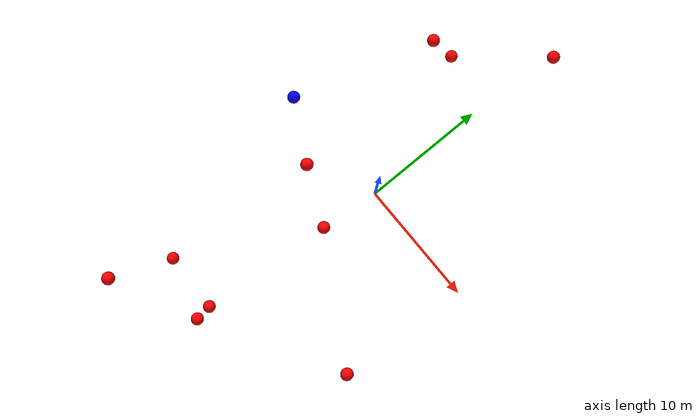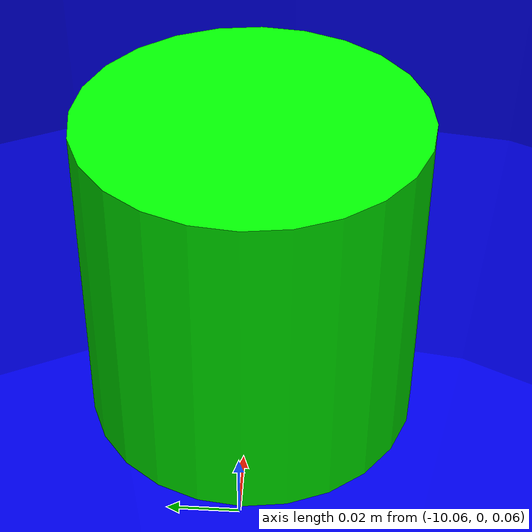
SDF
<?xml version="1.0" ?>
<sdf version="1.8">
    <world name="3d_world">
        <physics name="1ms" type="ode">
            <max_step_size>0.001</max_step_size>
            <real_time_factor>1.0</real_time_factor>
            <real_time_update_rate>1000.0</real_time_update_rate>
        </physics>
        <gravity>0 0 0</gravity>

        <plugin
            filename="gz-sim-physics-system"
            name="gz::sim::v8::systems::Physics">
        </plugin>
        <plugin
            filename="libignition-gazebo-user-commands-system.so"
            name="ignition::gazebo::systems::UserCommands">
        </plugin>
        <plugin
            filename="gz-sim-scene-broadcaster-system"
            name="gz::sim::systems::SceneBroadcaster">
        </plugin>
        <plugin
            filename="gz-sim-sensors-system"
            name="gz::sim::systems::Sensors">
            <render_engine>ogre2</render_engine>
        </plugin>

        <light type="directional" name="sun">
            <cast_shadows>true</cast_shadows>
            <pose>0 0 10 0 0 0</pose>
            <diffuse>0.8 0.8 0.8 1</diffuse>
            <specular>0.2 0.2 0.2 1</specular>
            <attenuation>
                <range>1000</range>
                <constant>0.9</constant>
                <linear>0.01</linear>
                <quadratic>0.001</quadratic>
            </attenuation>
            <direction>-0.5 0.1 -0.9</direction>
        </light>

        <!-- AGENTE -->
        <model name='agente' canonical_link='chassis'>
            <pose relative_to='world'>-10.0 0 0.0 0 0 0</pose>
            <link name='chassis'>
                <pose relative_to='__model__'>0.0 0 0.0 0 0 0</pose>
                <inertial>
                    <mass>1.14395</mass>
                    <inertia>
                        <ixx>0.095329</ixx>
                        <ixy>0</ixy>
                        <ixz>0</ixz>
                        <iyy>0.381317</iyy>
                        <iyz>0</iyz>
                        <izz>0.476646</izz>
                    </inertia>
                </inertial>
                <visual name='visual'>
                    <geometry>
                        <sphere>
                            <radius>0.5</radius>
                        </sphere>
                    </geometry>
                    <material>
                        <ambient>0.0 0.0 1.0 1</ambient>
                        <diffuse>0.0 0.0 1.0 1</diffuse>
                        <specular>0.0 0.0 1.0 1</specular>
                    </material>
                </visual>
                <collision name='collision'>
                    <geometry>
                        <sphere>
                            <radius>0.5</radius>
                        </sphere>
                    </geometry>
                </collision>
                <enable_gravity>false</enable_gravity>
            </link>

            <link name='lidar_link'>
                <pose relative_to='chassis'>0.0 0 0.1 0 0 0</pose>
                <inertial>
                    <mass>0.1</mass>
                    <inertia>
                        <ixx>0.000166667</ixx>
                        <iyy>0.000166667</iyy>
                        <izz>0.000166667</izz>
                    </inertia>
                </inertial>
                <collision name='collision'>
                    <geometry>
                        <cylinder>
                            <radius>0.05</radius>
                            <length>0.1</length>
                        </cylinder>
                    </geometry>
                </collision>
                <visual name='visual'>
                    <geometry>
                        <cylinder>
                            <radius>0.05</radius>
                            <length>0.1</length>
                        </cylinder>
                    </geometry>
                    <material>
                        <ambient>0.0 1.0 0.0 1</ambient>
                        <diffuse>0.0 1.0 0.0 1</diffuse>
                        <specular>0.0 1.0 0.0 1</specular>
                    </material>
                </visual>
                <sensor name="lidar" type="gpu_lidar">
                    <topic>scan</topic>
                    <update_rate>10</update_rate>
                    <lidar>
                        <scan>
                            <horizontal>
                                <samples>5000</samples>
                                <resolution>1</resolution>
                                <min_angle>-3.14159</min_angle>
                                <max_angle>3.14159</max_angle>
                            </horizontal>
                        </scan>
                        <range>
                            <min>0.1</min>
                            <max>10.0</max>
                            <resolution>0.01</resolution>
                        </range>
                    </lidar>
                    <visualize>true</visualize>
                    <always_on>true</always_on>
                    <update_rate>10</update_rate>
                    <pose_frame>lidar</pose_frame>
                </sensor>
                <enable_gravity>false</enable_gravity>
            </link>

            <joint name="lidar_joint" type="fixed">
                <parent>chassis</parent>
                <child>lidar_link</child>
            </joint>

            <plugin
                filename="ignition-gazebo-joint-state-publisher-system"
                name="ignition::gazebo::systems::JointStatePublisher">
            </plugin>
            <plugin
                filename="ignition-gazebo-odometry-publisher-system"
                name="ignition::gazebo::systems::OdometryPublisher">
                <dimensions>3</dimensions>
            </plugin>
            <plugin
                filename="ignition-gazebo-velocity-control-system"
                name="ignition::gazebo::systems::VelocityControl">
                <initial_linear>0.0 0 0</initial_linear>
                <initial_angular>0 0 0.0</initial_angular>
            </plugin>
            <plugin
                filename="libignition-gazebo-pose-publisher-system.so"
                name="ignition::gazebo::systems::PosePublisher">
                <topic>/agente/pose</topic>
                <frame_id>agente</frame_id>
                <update_rate>30</update_rate>
            </plugin>
        </model>

        <!-- OBSTACLE 1 -->
        <model name='obstacle_1' canonical_link='obstacle'>
            <static>false</static>
            <pose relative_to='world'>-6.40 11.36 0.39 0 0 0</pose>
            <link name='obstacle'>
                <pose relative_to='__model__'>0.0 0 0.0 0 0 0</pose>
                <visual name='visual'>
                    <geometry>
                        <sphere>
                            <radius>0.50</radius>
                        </sphere>
                    </geometry>
                    <material>
                        <ambient>1.0 0.0 0.0 1</ambient>
                        <diffuse>1.0 0.0 0.0 1</diffuse>
                        <specular>1.0 0.0 0.0 1</specular>
                    </material>
                </visual>
                <collision name='collision'>
                    <geometry>
                        <sphere>
                            <radius>0.50</radius>
                        </sphere>
                    </geometry>
                </collision>
                <enable_gravity>false</enable_gravity>
            </link>

            <plugin
                filename="ignition-gazebo-velocity-control-system"
                name="ignition::gazebo::systems::VelocityControl">
                <initial_linear>1.54 -1.28 -0.04</initial_linear>
                <initial_angular>0 0 0</initial_angular>
            </plugin>

            <plugin
                filename="ignition-gazebo-odometry-publisher-system"
                name="ignition::gazebo::systems::OdometryPublisher">
                <dimensions>3</dimensions>
            </plugin>
        </model>

        <!-- OBSTACLE 2 -->
        <model name='obstacle_2' canonical_link='obstacle'>
            <static>false</static>
            <pose relative_to='world'>-1.35 -16.83 -0.72 0 0 0</pose>
            <link name='obstacle'>
                <pose relative_to='__model__'>0.0 0 0.0 0 0 0</pose>
                <visual name='visual'>
                    <geometry>
                        <sphere>
                            <radius>0.50</radius>
                        </sphere>
                    </geometry>
                    <material>
                        <ambient>1.0 0.0 0.0 1</ambient>
                        <diffuse>1.0 0.0 0.0 1</diffuse>
                        <specular>1.0 0.0 0.0 1</specular>
                    </material>
                </visual>
                <collision name='collision'>
                    <geometry>
                        <sphere>
                            <radius>0.50</radius>
                        </sphere>
                    </geometry>
                </collision>
                <enable_gravity>false</enable_gravity>
            </link>

            <plugin
                filename="ignition-gazebo-velocity-control-system"
                name="ignition::gazebo::systems::VelocityControl">
                <initial_linear>0.89 1.79 0.08</initial_linear>
                <initial_angular>0 0 0</initial_angular>
            </plugin>

            <plugin
                filename="ignition-gazebo-odometry-publisher-system"
                name="ignition::gazebo::systems::OdometryPublisher">
                <dimensions>3</dimensions>
            </plugin>
        </model>

        <!-- OBSTACLE 3 -->
        <model name='obstacle_3' canonical_link='obstacle'>
            <static>false</static>
            <pose relative_to='world'>-4.94 12.45 -2.89 0 0 0</pose>
            <link name='obstacle'>
                <pose relative_to='__model__'>0.0 0 0.0 0 0 0</pose>
                <visual name='visual'>
                    <geometry>
                        <sphere>
                            <radius>0.50</radius>
                        </sphere>
                    </geometry>
                    <material>
                        <ambient>1.0 0.0 0.0 1</ambient>
                        <diffuse>1.0 0.0 0.0 1</diffuse>
                        <specular>1.0 0.0 0.0 1</specular>
                    </material>
                </visual>
                <collision name='collision'>
                    <geometry>
                        <sphere>
                            <radius>0.50</radius>
                        </sphere>
                    </geometry>
                </collision>
                <enable_gravity>false</enable_gravity>
            </link>

            <plugin
                filename="ignition-gazebo-velocity-control-system"
                name="ignition::gazebo::systems::VelocityControl">
                <initial_linear>0.98 -1.70 0.39</initial_linear>
                <initial_angular>0 0 0</initial_angular>
            </plugin>

            <plugin
                filename="ignition-gazebo-odometry-publisher-system"
                name="ignition::gazebo::systems::OdometryPublisher">
                <dimensions>3</dimensions>
            </plugin>
        </model>

        <!-- OBSTACLE 4 -->
        <model name='obstacle_4' canonical_link='obstacle'>
            <static>false</static>
            <pose relative_to='world'>-4.88 -2.78 2.32 0 0 0</pose>
            <link name='obstacle'>
                <pose relative_to='__model__'>0.0 0 0.0 0 0 0</pose>
                <visual name='visual'>
                    <geometry>
                        <sphere>
                            <radius>0.50</radius>
                        </sphere>
                    </geometry>
                    <material>
                        <ambient>1.0 0.0 0.0 1</ambient>
                        <diffuse>1.0 0.0 0.0 1</diffuse>
                        <specular>1.0 0.0 0.0 1</specular>
                    </material>
                </visual>
                <collision name='collision'>
                    <geometry>
                        <sphere>
                            <radius>0.50</radius>
                        </sphere>
                    </geometry>
                </collision>
                <enable_gravity>false</enable_gravity>
            </link>

            <plugin
                filename="ignition-gazebo-velocity-control-system"
                name="ignition::gazebo::systems::VelocityControl">
                <initial_linear>1.55 0.52 -0.43</initial_linear>
                <initial_angular>0 0 0</initial_angular>
            </plugin>

            <plugin
                filename="ignition-gazebo-odometry-publisher-system"
                name="ignition::gazebo::systems::OdometryPublisher">
                <dimensions>3</dimensions>
            </plugin>
        </model>

        <!-- OBSTACLE 5 -->
        <model name='obstacle_5' canonical_link='obstacle'>
            <static>false</static>
            <pose relative_to='world'>-7.39 -19.49 4.21 0 0 0</pose>
            <link name='obstacle'>
                <pose relative_to='__model__'>0.0 0 0.0 0 0 0</pose>
                <visual name='visual'>
                    <geometry>
                        <sphere>
                            <radius>0.50</radius>
                        </sphere>
                    </geometry>
                    <material>
                        <ambient>1.0 0.0 0.0 1</ambient>
                        <diffuse>1.0 0.0 0.0 1</diffuse>
                        <specular>1.0 0.0 0.0 1</specular>
                    </material>
                </visual>
                <collision name='collision'>
                    <geometry>
                        <sphere>
                            <radius>0.50</radius>
                        </sphere>
                    </geometry>
                </collision>
                <enable_gravity>false</enable_gravity>
            </link>

            <plugin
                filename="ignition-gazebo-velocity-control-system"
                name="ignition::gazebo::systems::VelocityControl">
                <initial_linear>0.81 1.79 -0.39</initial_linear>
                <initial_angular>0 0 0</initial_angular>
            </plugin>

            <plugin
                filename="ignition-gazebo-odometry-publisher-system"
                name="ignition::gazebo::systems::OdometryPublisher">
                <dimensions>3</dimensions>
            </plugin>
        </model>

        <!-- OBSTACLE 6 -->
        <model name='obstacle_6' canonical_link='obstacle'>
            <static>false</static>
            <pose relative_to='world'>-1.67 -15.69 -2.64 0 0 0</pose>
            <link name='obstacle'>
                <pose relative_to='__model__'>0.0 0 0.0 0 0 0</pose>
                <visual name='visual'>
                    <geometry>
                        <sphere>
                            <radius>0.50</radius>
                        </sphere>
                    </geometry>
                    <material>
                        <ambient>1.0 0.0 0.0 1</ambient>
                        <diffuse>1.0 0.0 0.0 1</diffuse>
                        <specular>1.0 0.0 0.0 1</specular>
                    </material>
                </visual>
                <collision name='collision'>
                    <geometry>
                        <sphere>
                            <radius>0.50</radius>
                        </sphere>
                    </geometry>
                </collision>
                <enable_gravity>false</enable_gravity>
            </link>

            <plugin
                filename="ignition-gazebo-velocity-control-system"
                name="ignition::gazebo::systems::VelocityControl">
                <initial_linear>0.97 1.72 0.29</initial_linear>
                <initial_angular>0 0 0</initial_angular>
            </plugin>

            <plugin
                filename="ignition-gazebo-odometry-publisher-system"
                name="ignition::gazebo::systems::OdometryPublisher">
                <dimensions>3</dimensions>
            </plugin>
        </model>

        <!-- OBSTACLE 7 -->
        <model name='obstacle_7' canonical_link='obstacle'>
            <static>false</static>
            <pose relative_to='world'>0.71 17.58 0.99 0 0 0</pose>
            <link name='obstacle'>
                <pose relative_to='__model__'>0.0 0 0.0 0 0 0</pose>
                <visual name='visual'>
                    <geometry>
                        <sphere>
                            <radius>0.50</radius>
                        </sphere>
                    </geometry>
                    <material>
                        <ambient>1.0 0.0 0.0 1</ambient>
                        <diffuse>1.0 0.0 0.0 1</diffuse>
                        <specular>1.0 0.0 0.0 1</specular>
                    </material>
                </visual>
                <collision name='collision'>
                    <geometry>
                        <sphere>
                            <radius>0.50</radius>
                        </sphere>
                    </geometry>
                </collision>
                <enable_gravity>false</enable_gravity>
            </link>

            <plugin
                filename="ignition-gazebo-velocity-control-system"
                name="ignition::gazebo::systems::VelocityControl">
                <initial_linear>-0.38 -1.96 -0.11</initial_linear>
                <initial_angular>0 0 0</initial_angular>
            </plugin>

            <plugin
                filename="ignition-gazebo-odometry-publisher-system"
                name="ignition::gazebo::systems::OdometryPublisher">
                <dimensions>3</dimensions>
            </plugin>
        </model>

        <!-- OBSTACLE 8 -->
        <model name='obstacle_8' canonical_link='obstacle'>
            <static>false</static>
            <pose relative_to='world'>-6.61 -15.57 -3.22 0 0 0</pose>
            <link name='obstacle'>
                <pose relative_to='__model__'>0.0 0 0.0 0 0 0</pose>
                <visual name='visual'>
                    <geometry>
                        <sphere>
                            <radius>0.50</radius>
                        </sphere>
                    </geometry>
                    <material>
                        <ambient>1.0 0.0 0.0 1</ambient>
                        <diffuse>1.0 0.0 0.0 1</diffuse>
                        <specular>1.0 0.0 0.0 1</specular>
                    </material>
                </visual>
                <collision name='collision'>
                    <geometry>
                        <sphere>
                            <radius>0.50</radius>
                        </sphere>
                    </geometry>
                </collision>
                <enable_gravity>false</enable_gravity>
            </link>

            <plugin
                filename="ignition-gazebo-velocity-control-system"
                name="ignition::gazebo::systems::VelocityControl">
                <initial_linear>0.44 1.91 0.39</initial_linear>
                <initial_angular>0 0 0</initial_angular>
            </plugin>

            <plugin
                filename="ignition-gazebo-odometry-publisher-system"
                name="ignition::gazebo::systems::OdometryPublisher">
                <dimensions>3</dimensions>
            </plugin>
        </model>

        <!-- OBSTACLE 9 -->
        <model name='obstacle_9' canonical_link='obstacle'>
            <static>false</static>
            <pose relative_to='world'>-0.62 -4.69 -1.30 0 0 0</pose>
            <link name='obstacle'>
                <pose relative_to='__model__'>0.0 0 0.0 0 0 0</pose>
                <visual name='visual'>
                    <geometry>
                        <sphere>
                            <radius>0.50</radius>
                        </sphere>
                    </geometry>
                    <material>
                        <ambient>1.0 0.0 0.0 1</ambient>
                        <diffuse>1.0 0.0 0.0 1</diffuse>
                        <specular>1.0 0.0 0.0 1</specular>
                    </material>
                </visual>
                <collision name='collision'>
                    <geometry>
                        <sphere>
                            <radius>0.50</radius>
                        </sphere>
                    </geometry>
                </collision>
                <enable_gravity>false</enable_gravity>
            </link>

            <plugin
                filename="ignition-gazebo-velocity-control-system"
                name="ignition::gazebo::systems::VelocityControl">
                <initial_linear>0.46 1.02 0.28</initial_linear>
                <initial_angular>0 0 0</initial_angular>
            </plugin>

            <plugin
                filename="ignition-gazebo-odometry-publisher-system"
                name="ignition::gazebo::systems::OdometryPublisher">
                <dimensions>3</dimensions>
            </plugin>
        </model>

        <!-- OBSTACLE 10 -->
        <model name='obstacle_10' canonical_link='obstacle'>
            <static>false</static>
            <pose relative_to='world'>9.25 -10.53 1.33 0 0 0</pose>
            <link name='obstacle'>
                <pose relative_to='__model__'>0.0 0 0.0 0 0 0</pose>
                <visual name='visual'>
                    <geometry>
                        <sphere>
                            <radius>0.50</radius>
                        </sphere>
                    </geometry>
                    <material>
                        <ambient>1.0 0.0 0.0 1</ambient>
                        <diffuse>1.0 0.0 0.0 1</diffuse>
                        <specular>1.0 0.0 0.0 1</specular>
                    </material>
                </visual>
                <collision name='collision'>
                    <geometry>
                        <sphere>
                            <radius>0.50</radius>
                        </sphere>
                    </geometry>
                </collision>
                <enable_gravity>false</enable_gravity>
            </link>

            <plugin
                filename="ignition-gazebo-velocity-control-system"
                name="ignition::gazebo::systems::VelocityControl">
                <initial_linear>-1.32 1.49 -0.19</initial_linear>
                <initial_angular>0 0 0</initial_angular>
            </plugin>

            <plugin
                filename="ignition-gazebo-odometry-publisher-system"
                name="ignition::gazebo::systems::OdometryPublisher">
                <dimensions>3</dimensions>
            </plugin>
        </model>

    </world>
</sdf>
